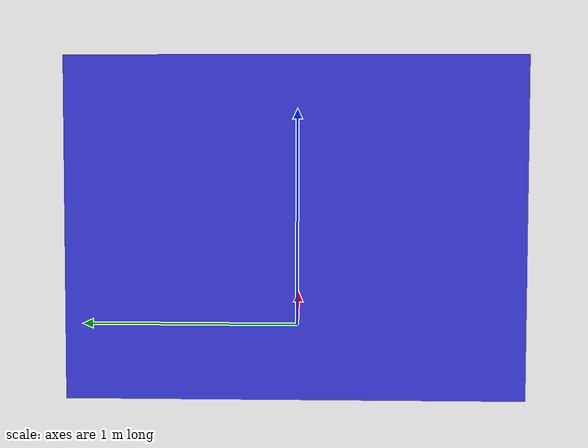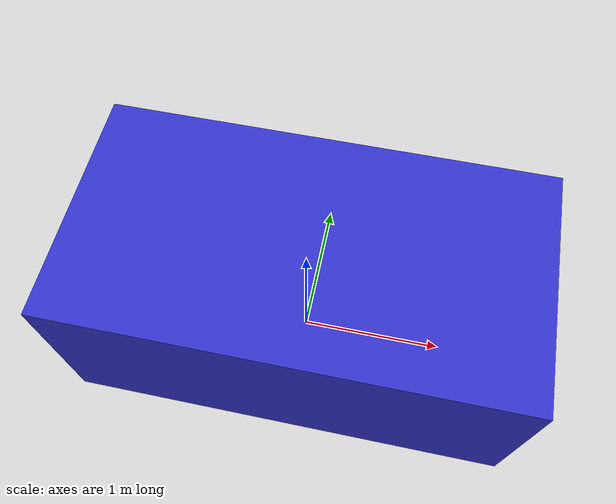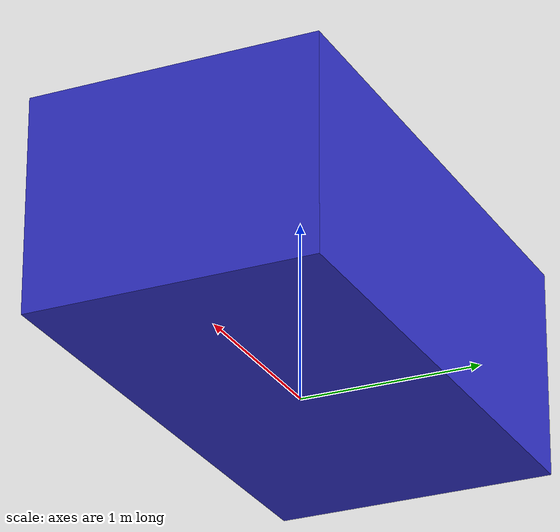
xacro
<!-- Chassis -->
<robot xmlns:xacro="http://www.ros.org/wiki/xacro" name="tp_car">
    <xacro:arg name="tp_num" default="3"/>
    <xacro:property name="tp_count" value="$(arg tp_num)"/>
    <xacro:property name="use_dynamic_tps_config" value="false"/>
    <!-- Color-->
    <material name="blue">
        <color rgba="0.2 0.2 0.8 0.9"/>
    </material>

    <!-- Root coordinate -->
    <link name="map"/>

    <!-- tp car function -->
    <xacro:macro name="create_tp_car" params="id car_length car_width car_height color">
        <!-- projection point of the chasis on the map -->
        <link name="base_footprint_tp${id}"/>

        <!-- chasis-->
         <link name="base_link_tp${id}">
            <visual>
                <geometry>
                    <box size="${car_length} ${car_width} ${car_height}"/>
                </geometry>
                <material name="${color}"/>
            </visual>
        </link>

        <!-- projection point to the map -->
        <joint name="footprint${id}_to_map" type="fixed">
            <parent link="map"/>
            <child link="base_footprint_tp${id}"/>
        </joint>

        <!-- chasis to the projection point -->
        <joint name="base_to_footprint${id}" type="fixed">
            <parent link="base_footprint_tp${id}"/>
            <child link="base_link_tp${id}"/>
            <origin xyz="0.0 0.0 ${car_height / 2.0}"/>
        </joint>
    </xacro:macro>

    <!-- function call, controlled by tp_num arg -->
    <!-- static tps config -->
    <xacro:if value="${not use_dynamic_tps_config}">
      <xacro:if value="${int(tp_count) >= 1}">
        <xacro:create_tp_car id="1" car_length="3.0" car_width="1.6" car_height="1.2" color="blue"/>
      </xacro:if>
      <xacro:if value="${int(tp_count) >= 2}">
        <xacro:create_tp_car id="2" car_length="3.0" car_width="1.6" car_height="1.2" color="blue"/>
      </xacro:if>
      <xacro:if value="${int(tp_count) >= 3}">
        <xacro:create_tp_car id="3" car_length="3.0" car_width="1.6" car_height="1.2" color="blue"/>
      </xacro:if>
    </xacro:if>
    <!-- dynamic tps config -->
    <xacro:if value="${use_dynamic_tps_config}">
      <xacro:if value="${int(tp_count) >= 1}">
        <xacro:create_tp_car id="1" car_length="8.0" car_width="2.6" car_height="1.2" color="blue"/>
      </xacro:if>
      <xacro:if value="${int(tp_count) >= 2}">
        <xacro:create_tp_car id="2" car_length="6.0" car_width="2.0" car_height="1.2" color="blue"/>
      </xacro:if>
      <xacro:if value="${int(tp_count) >= 3}">
        <xacro:create_tp_car id="3" car_length="3.0" car_width="7.6" car_height="1.2" color="blue"/>
      </xacro:if>
    </xacro:if>

</robot>
